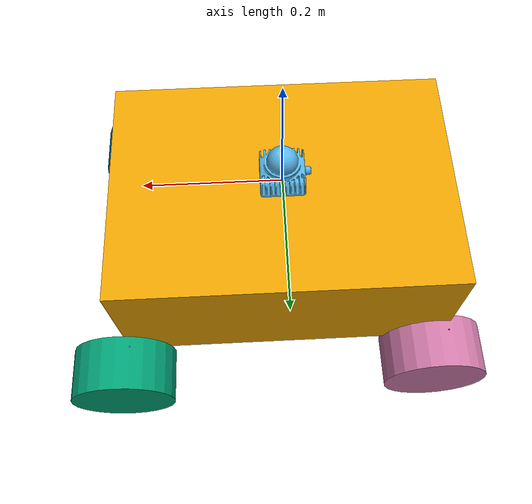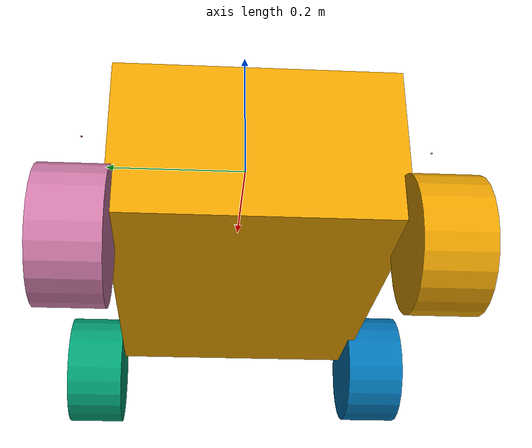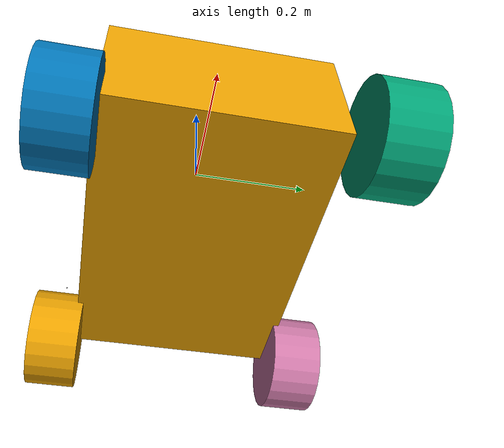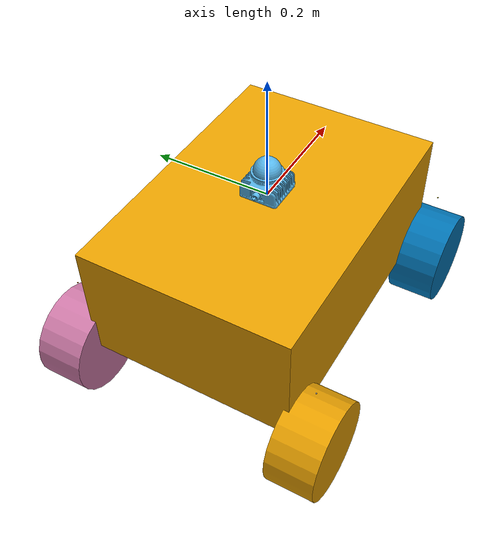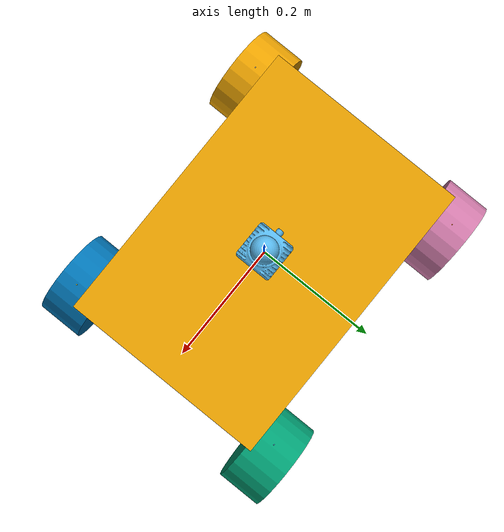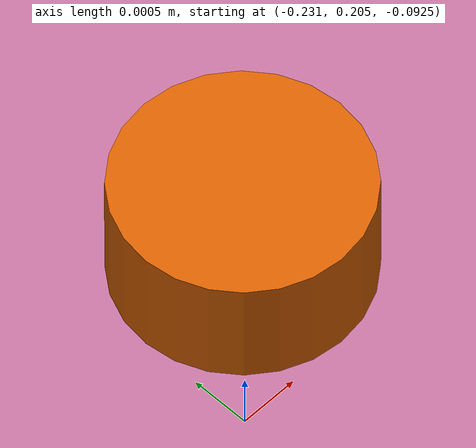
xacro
<?xml version="1.0"?>
<robot xmlns:xacro="http://ros.org/wiki/xacro" name="ranger_livox">
    <xacro:arg name="use_simulation" default="true"/>
    <xacro:include filename="$(find simulation_config)/description/urdf/livox_mid360.urdf.xacro"/>
    <xacro:include filename="$(find simulation_config)/description/urdf/ranger_mini_gazebo.xacro"/>

    <xacro:livox_mid360 connected_to="base_link" simulation="true" lidar_name="livox_lidar" imu_name="livox_imu"
                        xyz="0.0 0.0 0.055" rpy="0.0 0.0 0.0"/>
</robot>

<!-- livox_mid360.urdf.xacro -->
<robot xmlns:xacro="http://ros.org/wiki/xacro" name="lidar_mid360">

    <xacro:property name="M_PI" value="3.1415926535"/>
    <xacro:property name="update_rate" value="10"/>
    <xacro:property name="resolution" value="0.01"/>
    <xacro:property name="noise_mean" value="0.01"/>
    <xacro:property name="noise_stddev" value="0.00"/>
    <xacro:property name="laser_min_range" value="0.1"/>
    <xacro:property name="laser_max_range" value="200"/>
    <xacro:property name="vertical_fov" value="70.4"/>
    <xacro:property name="lidar_ros_topic" value="/livox/lidar"/>
    <xacro:property name="samples" value="10000"/>
    <xacro:property name="downsample" value="1"/>

    <xacro:property name="imu_update_rate" value="100.0"/>
    <xacro:property name="imu_gaussian_noise" value="0.01"/>
    <xacro:property name="imu_ros_topic" value="/livox/imu"/>

    <xacro:macro name="livox_mid360" params="connected_to lidar_name imu_name simulation xyz:='0 0 0' rpy:='0 0 0' ">

        <!-- Lidar is fixed to the connected_to link -->
        <joint name="${lidar_name}_joint" type="fixed">
            <origin xyz="${xyz}" rpy="${rpy}"/>
            <parent link="${connected_to}"/>
            <child link="${lidar_name}"/>
        </joint>

        <!-- Lidar link -->
        <link name="${lidar_name}">
            <inertial>
                <mass value="0.114"/>
                <origin xyz="0 0 0"/>
                <inertia ixx="0.001" ixy="0.0" ixz="0.0"
                         iyy="0.001" iyz="0.0"
                         izz="0.001"/>
            </inertial>
            <visual>
                <origin xyz="0 0 0" rpy="0 0 0"/>
                <geometry>
                    <mesh filename="package://simulation_config/description/meshes/lidar/livox_mid360.stl" scale="1 1 1"/>
                </geometry>
            </visual>
            <collision>
                <geometry>
                    <box>
                        <size>0.05 0.05 0.05</size>
                    </box>
                </geometry>
            </collision>
        </link>

        <link name="${imu_name}">
            <visual>
                <origin xyz="0 0 0" rpy="0 0 0" />
                <geometry >
                    <box size="0.001 0.001 0.001" />
                </geometry>
            </visual>
            <collision>
                <origin xyz="0 0 -0.05" rpy="0 0 0" />
                <geometry >
                    <box size="0.0001 0.0001 0.0001" />
                </geometry>
            </collision>
            <inertial>
                <mass value="0.001"/>
                <inertia ixx="0.001" ixy="0.0" ixz="0.0" iyy="0.001" iyz="0.0" izz="0.001"/>
            </inertial>
        </link>

        <gazebo reference="${imu_name}">
            <material>Gazebo/Orange</material>
            <turnGravityOff>true</turnGravityOff>
        </gazebo>

        <joint name="${imu_name}_joint" type="fixed">
            <parent link="${lidar_name}"/>
            <child link="${imu_name}"/>
            <origin xyz="0.0 0.0 0.0" rpy="0 0 0" />
        </joint>

        <xacro:if value="${simulation}">
            <gazebo reference="${imu_name}">
                <gravity>true</gravity>
                <sensor name="imu_sensor" type="imu">
                    <always_on>true</always_on>
                    <update_rate>${imu_update_rate}</update_rate>
                    <visualize>true</visualize>
                    <topic>/livox/imu</topic>
                    <plugin filename="libgazebo_ros_imu_sensor.so" name="imu_plugin">
                        <topicName>${imu_ros_topic}</topicName>
                        <bodyName>${imu_name}</bodyName>
                        <updateRateHZ>${imu_update_rate}</updateRateHZ>
                        <gaussianNoise>${imu_gaussian_noise}</gaussianNoise>
                        <xyzOffset>0 0 0</xyzOffset>
                        <rpyOffset>0 0 0</rpyOffset>
                        <frameName>${imu_name}</frameName>
                    </plugin>
                    <pose>0 0 0 0 0 0</pose>
                </sensor>
            </gazebo>
            <gazebo reference="${lidar_name}">
                <sensor type="ray" name="${lidar_name}">
                    <pose>0 0 0 0 0 0</pose>
                    <visualize>true</visualize>
                    <always_on>True</always_on>
                    <update_rate>${update_rate}</update_rate>
                    <!-- This ray plgin is only for visualization. -->
                    <plugin name="gazebo_ros_laser_controller" filename="liblivox_laser_simulation.so">
                        <ray>
                            <scan>
                                <horizontal>
                                    <samples>100</samples>
                                    <resolution>1</resolution>
                                    <min_angle>-${M_PI}</min_angle>
                                    <max_angle>${M_PI}</max_angle>
                                </horizontal>
                                <vertical>
                                    <samples>50</samples>
                                    <resolution>1</resolution>
                                    <min_angle>-0.261799</min_angle>
                                    <max_angle>0.261799</max_angle>
                                </vertical>
                            </scan>
                            <range>
                                <min>${laser_min_range}</min>
                                <max>${laser_max_range}</max>
                                <resolution>${resolution}</resolution>
                            </range>
                            <noise>
                                <type>gaussian</type>
                                <mean>${noise_mean}</mean>
                                <stddev>${noise_stddev}</stddev>
                            </noise>
                        </ray>
                        <!-- visualize is true could see blue line in gazebo-->
                        <visualize>False</visualize>
                        <samples>${samples}</samples>
                        <downsample>${downsample}</downsample>
                        <csv_file_name>package://livox_laser_simulation/scan_mode/mid360-real-centr.csv</csv_file_name>
                        <publish_pointcloud_type>3</publish_pointcloud_type>
                        <ros_topic>${lidar_ros_topic}</ros_topic>
                        <frameName>base_link</frameName>
                    </plugin>
                </sensor>
            </gazebo>
        </xacro:if>

    </xacro:macro>
</robot>

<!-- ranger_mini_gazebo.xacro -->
<robot name="ranger_mini_v2"
    xmlns:xacro="http://ros.org/wiki/xacro">
    <!-- Base link -->
    <link name="base_link">
        <inertial>
            <origin xyz="0.0 0.0 0.0"/>
            <mass value="10"/>
            <inertia ixx="1" ixy="0.0" ixz="0.0" iyy="1" iyz="0.0" izz="1"/>
        </inertial>
        <visual>
            <origin xyz="0 0 -0.1" rpy="0 0 0" />
            <geometry>
                <box size="0.5 0.35 0.2"/>
            </geometry>
        </visual>
        <collision>
            <origin xyz="0 0 -0.1" rpy="0 0 0" />
            <geometry>
                <box size="0.5 0.35 0.2"/>
            </geometry>
        </collision>

    </link>

   <link name="fl_steering_wheel_link">
        <inertial>
            <origin xyz="0.0 0.0 0.0"/>
            <mass value="1"/>
            <inertia ixx="0.01" ixy="0.0" ixz="0.0" iyy="0.01" iyz="0.0" izz="0.01"/>
        </inertial>
        <visual>
            <origin xyz="0 0 0" rpy="0 0 0" />
            <geometry>
                <cylinder radius="0.001" length="0.001"/>
            </geometry>
        </visual>
        <collision>
            <origin xyz="0 0 0.008" rpy="0 0 0" />
            <geometry>
                <cylinder radius="0.001" length="0.001"/>
            </geometry>
        </collision>
        <collision>
            <origin xyz="0 0 0" rpy="0 0 0" />
            <geometry>
                <cylinder radius="0.001" length="0.001"/>
            </geometry>
        </collision>
    </link>
    <joint name="fl_steering_wheel" type="revolute">
        <origin xyz="0.23 0.206 -0.1" rpy="0 0 0" />
        <parent link="base_link"/>
        <child link="fl_steering_wheel_link"/>
        <axis xyz="0 0 1" rpy="0 0 0" />
        <limit effort="5" velocity="6.28"  lower="-2.1" upper="2.1" />
    </joint>

        <link name="fl_wheel_link">
            <inertial>
                <mass value="8" />
                <origin xyz="0 0 0" />
                <inertia ixx="0.1171" ixy="0" ixz="0" iyy="0.1361" iyz="0" izz="0.1171" />
            </inertial>
            <visual>
                <origin xyz="0 0 0" rpy="1.57 0 0" />
                <geometry>
                    <cylinder length="0.08" radius="0.08" />
                </geometry>
            </visual>
            <collision>
                <origin xyz="0 0 0" rpy="1.57 0 0" />
                <geometry>
                    <cylinder length="0.08" radius="0.08" />
                </geometry>
            </collision>
        </link>

        <joint name="fl_wheel" type="continuous">
            <origin xyz="0.03 0.01 -0.12" rpy="0 0 0" />
            <parent link="fl_steering_wheel_link"/>
            <child link="fl_wheel_link"/>
            <axis xyz="0 1 0" rpy="0 0 0" />
        </joint>

   <link name="fr_steering_wheel_link">
        <inertial>
            <origin xyz="0.0 0.0 0.0" rpy="0.0 0.0 0.0"/>
            <mass value="1"/>
            <inertia ixx="0.01" ixy="0.0" ixz="0.0" iyy="0.01" iyz="0.0" izz="0.01"/>
        </inertial>
        <visual>
            <origin xyz="0 0 0.008" rpy="0 0 0" />
            <geometry>
                <cylinder radius="0.001" length="0.001"/>
            </geometry>
        </visual>
        <collision>
            <origin xyz="0 0 0.008" rpy="0 0 0" />
            <geometry>
                <cylinder radius="0.001" length="0.001"/>
            </geometry>
        </collision>
    </link>
    <joint name="fr_steering_wheel" type="revolute">
        <origin xyz="0.23 -0.206 -0.1" rpy="0 0 0" />
        <parent link="base_link"/>
        <child link="fr_steering_wheel_link"/>
        <axis xyz="0 0 1" rpy="0 0 0" />
        <limit effort="5" velocity="6.28"  lower="-2.1" upper="2.1" />
    </joint>

        <link name="fr_wheel_link">
            <inertial>
                <mass value="8" />
                <origin xyz="0 0 0" />
                <inertia ixx="0.1171" ixy="0" ixz="0" iyy="0.1361" iyz="0" izz="0.1171" />
            </inertial>
            <visual>
                <origin xyz="0 0 0" rpy="1.57 0 0" />
                <geometry>
                    <cylinder length="0.08" radius="0.08" />
                </geometry>
            </visual>
            <collision>
                <origin xyz="0 0 0" rpy="1.57 0 0" />
                <geometry>
                    <cylinder length="0.08" radius="0.085" />
                </geometry>
            </collision>
        </link>

        <joint name="fr_wheel" type="continuous">
            <origin xyz="0.0 0.0 -0.12" rpy="0 0 0" />
            <parent link="fr_steering_wheel_link"/>
            <child link="fr_wheel_link"/>
            <axis xyz="0 1 0" rpy="0 0 0" />
        </joint>

   <link name="rl_steering_wheel_link">
        <inertial>
            <origin xyz="0.0 0.0 0.0" rpy="0.0 0.0 0.0"/>
            <mass value="1"/>
            <inertia ixx="0.01" ixy="0.0" ixz="0.0" iyy="0.01" iyz="0.0" izz="0.01"/>
        </inertial>
        <visual>
            <origin xyz="0 0 0.008" rpy="0 0 0" />
            <geometry>
                <cylinder radius="0.001" length="0.001"/>
            </geometry>
        </visual>
        <collision>
            <origin xyz="0 0 0.008" rpy="0 0 0" />
            <geometry>
                <cylinder radius="0.001" length="0.001"/>
            </geometry>
        </collision>
    </link>
    <joint name="rl_steering_wheel" type="revolute">
        <origin xyz="-0.23 0.206 -0.1" rpy="0 0 0" />
        <parent link="base_link"/>
        <child link="rl_steering_wheel_link"/>
        <axis xyz="0 0 1" rpy="0 0 0" />
        <limit effort="5" velocity="6.28"  lower="-2.1" upper="2.1" />
    </joint>

        <link name="rl_wheel_link">
            <inertial>
                <mass value="8" />
                <origin xyz="0 0 0" />
                <inertia ixx="0.1171" ixy="0" ixz="0" iyy="0.1361" iyz="0" izz="0.1171" />
            </inertial>
            <visual>
                <origin xyz="0 0 0" rpy="1.57 0 0" />
                <geometry>
                    <cylinder length="0.08" radius="0.08" />
                </geometry>
            </visual>
            <collision>
                <origin xyz="0 0 0" rpy="1.57 0 0" />
                <geometry>
                    <cylinder length="0.08" radius="0.08" />
                </geometry>
            </collision>
        </link>

        <joint name="rl_wheel" type="continuous">
            <origin xyz="0.0 0.0 -0.12 " rpy="0 0 0" />
            <parent link="rl_steering_wheel_link"/>
            <child link="rl_wheel_link"/>
            <axis xyz="0 1 0" rpy="0 0 0" />
        </joint>

   <link name="rr_steering_wheel_link">
        <inertial>
            <origin xyz="0.0 0.0 0.0"/>
            <mass value="1"/>
            <inertia ixx="0.01" ixy="0.0" ixz="0.0" iyy="0.01" iyz="0.0" izz="0.01"/>
        </inertial>
        <visual>
            <origin xyz="0 0 0" rpy="0 0 0" />
            <geometry>
                <cylinder radius="0.001" length="0.001"/>
            </geometry>
        </visual>
        <collision>
            <origin xyz="0 0 0" rpy="0 0 0" />
            <geometry>
                <cylinder radius="0.001" length="0.001"/>
            </geometry>
        </collision>
    </link>
    <joint name="rr_steering_wheel" type="revolute">
        <origin xyz="-0.23 -0.206 -0.1" rpy="0 0 0" />
        <parent link="base_link"/>
        <child link="rr_steering_wheel_link"/>
        <axis xyz="0 0 1" rpy="0 0 0" />
        <limit effort="5" velocity="6.28"  lower="-2.1" upper="2.1" />
    </joint>

        <link name="rr_wheel_link">
            <inertial>
                <mass value="8" />
                <origin xyz="0 0 0" />
                <inertia ixx="0.1171" ixy="0" ixz="0" iyy="0.1361" iyz="0" izz="0.1171" />
            </inertial>
            <visual>
                <origin xyz="0 0 0" rpy="1.57 0 0" />
                <geometry>
                    <cylinder length="0.08" radius="0.08" />
                </geometry>
            </visual>
            <collision>
                <origin xyz="0 0 0" rpy="1.57 0 0" />
                <geometry>
                    <cylinder length="0.08" radius="0.08" />
                </geometry>
            </collision>
        </link>

        <joint name="rr_wheel" type="continuous">
            <origin xyz="0.0 0.0 -0.12 " rpy="0 0 0" />
            <parent link="rr_steering_wheel_link"/>
            <child link="rr_wheel_link"/>
            <axis xyz="0 1 0" rpy="0 0 0" />
        </joint>

	<transmission name="fl_steering_wheel_trans">
      <type>transmission_interface/SimpleTransmission</type>
      <joint name="fl_steering_wheel">
		<hardwareInterface>hardware_interface/PositionJointInterface</hardwareInterface>
      </joint>
	  <actuator name="fl_steering_wheel_motor">
		<hardwareInterface>hardware_interface/PositionJointInterface</hardwareInterface>
		<mechanicalReduction>30</mechanicalReduction>
      </actuator>
	</transmission>

	<transmission name="fr_steering_wheel_trans">
      <type>transmission_interface/SimpleTransmission</type>
      <joint name="fr_steering_wheel">
		<hardwareInterface>hardware_interface/PositionJointInterface</hardwareInterface>
      </joint>
	  <actuator name="fr_steering_wheel_motor">
		<hardwareInterface>hardware_interface/PositionJointInterface</hardwareInterface>
		<mechanicalReduction>30</mechanicalReduction>
      </actuator>
	</transmission>

	<transmission name="rl_steering_wheel_trans">
      <type>transmission_interface/SimpleTransmission</type>
      <joint name="rl_steering_wheel">
		<hardwareInterface>hardware_interface/PositionJointInterface</hardwareInterface>
      </joint>
	  <actuator name="rl_steering_wheel_motor">
		<hardwareInterface>hardware_interface/PositionJointInterface</hardwareInterface>
		<mechanicalReduction>30</mechanicalReduction>
      </actuator>
	</transmission>

	<transmission name="rr_steering_wheel_trans">
      <type>transmission_interface/SimpleTransmission</type>
      <joint name="rr_steering_wheel">
		<hardwareInterface>hardware_interface/PositionJointInterface</hardwareInterface>
      </joint>
	  <actuator name="rr_steering_wheel_motor">
		<hardwareInterface>hardware_interface/PositionJointInterface</hardwareInterface>
		<mechanicalReduction>30</mechanicalReduction>
      </actuator>
	</transmission>

	<transmission name="fl_wheel_trans">
      <type>transmission_interface/SimpleTransmission</type>
      <joint name="fl_wheel">
		<hardwareInterface>hardware_interface/VelocityJointInterface</hardwareInterface>
      </joint>
	  <actuator name="fl_wheel_motor">
		<hardwareInterface>hardware_interface/VelocityJointInterface</hardwareInterface>
		<mechanicalReduction>30</mechanicalReduction>
      </actuator>
	</transmission>

	<transmission name="fr_wheel_trans">
      <type>transmission_interface/SimpleTransmission</type>
      <joint name="fr_wheel">
		<hardwareInterface>hardware_interface/VelocityJointInterface</hardwareInterface>
      </joint>
	  <actuator name="fr_wheel_motor">
		<hardwareInterface>hardware_interface/VelocityJointInterface</hardwareInterface>
		<mechanicalReduction>30</mechanicalReduction>
      </actuator>
	</transmission>

	<transmission name="rl_wheel_trans">
      <type>transmission_interface/SimpleTransmission</type>
      <joint name="rl_wheel">
		<hardwareInterface>hardware_interface/VelocityJointInterface</hardwareInterface>
      </joint>
	  <actuator name="rl_wheel_motor">
		<hardwareInterface>hardware_interface/VelocityJointInterface</hardwareInterface>
		<mechanicalReduction>30</mechanicalReduction>
      </actuator>
	</transmission>

	<transmission name="rr_wheel_trans">
      <type>transmission_interface/SimpleTransmission</type>
      <joint name="rr_wheel">
		<hardwareInterface>hardware_interface/VelocityJointInterface</hardwareInterface>
      </joint>
	  <actuator name="rr_wheel_motor">
		<hardwareInterface>hardware_interface/VelocityJointInterface</hardwareInterface>
		<mechanicalReduction>30</mechanicalReduction>
      </actuator>
	</transmission>
  <gazebo>
    <plugin name="gazebo_ros_control" filename="libgazebo_ros_control.so">
    </plugin>
  </gazebo>

</robot>
